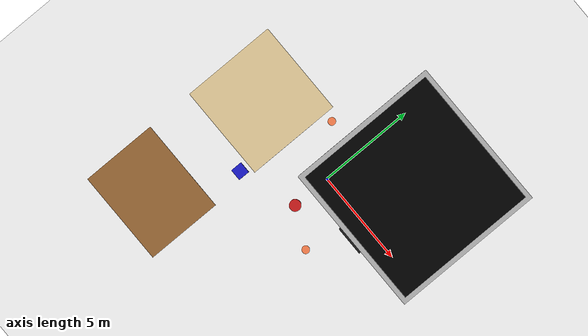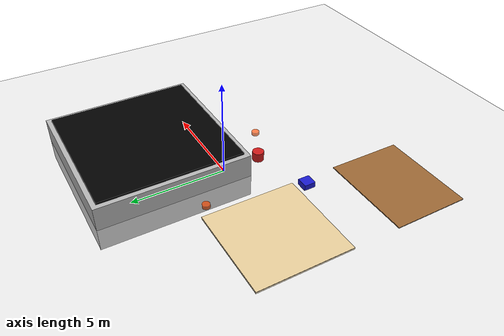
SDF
<?xml version="1.0" ?>
<sdf version="1.6">
  <world name="firefighter_test_world">
    <physics name="default_physics" default="true" type="ode">
      <max_step_size>0.001</max_step_size>
      <real_time_factor>1</real_time_factor>
      <real_time_update_rate>1000</real_time_update_rate>
    </physics>

    <!-- A global light source -->
    <include>
      <uri>model://sun</uri>
    </include>

    <!-- Ground Plane -->
    <include>
      <uri>model://ground_plane</uri>
    </include>

    <!-- Main building structure -->
    <model name="main_building">
      <static>true</static>
      <pose>3 3 0 0 0 0</pose>

      <!-- Main walls -->
      <link name="walls">
        <visual name="visual">
          <geometry>
            <box>
              <size>8 8 2.5</size>
            </box>
          </geometry>
          <material>
            <ambient>0.7 0.7 0.7 1</ambient>
            <diffuse>0.7 0.7 0.7 1</diffuse>
          </material>
        </visual>
        <collision name="collision">
          <geometry>
            <box>
              <size>8 8 2.5</size>
            </box>
          </geometry>
        </collision>
      </link>

      <!-- Interior space (negative space) -->
      <link name="interior">
        <pose>0 0 0.1 0 0 0</pose>
        <visual name="visual">
          <geometry>
            <box>
              <size>7.5 7.5 2.5</size>
            </box>
          </geometry>
          <material>
            <ambient>0 0 0 0</ambient>
            <diffuse>0 0 0 0</diffuse>
          </material>
        </visual>
        <collision name="collision">
          <geometry>
            <box>
              <size>7.5 7.5 2.5</size>
            </box>
          </geometry>
        </collision>
      </link>

      <!-- Entrance (south side) -->
      <link name="entrance">
        <pose>0 -4 0.5 0 0 0</pose>
        <visual name="visual">
          <geometry>
            <box>
              <size>1.5 0.2 1</size>
            </box>
          </geometry>
          <material>
            <ambient>0.1 0.1 0.1 1</ambient>
            <diffuse>0.1 0.1 0.1 1</diffuse>
          </material>
        </visual>
      </link>
    </model>

    <!-- Sand area -->
    <model name="sand_area">
      <static>true</static>
      <pose>-5 0 -0.05 0 0 0</pose>
      <link name="sand_link">
        <visual name="visual">
          <geometry>
            <box>
              <size>5 5 0.1</size>
            </box>
          </geometry>
          <material>
            <ambient>0.9 0.8 0.6 1</ambient>
            <diffuse>0.9 0.8 0.6 1</diffuse>
            <specular>0.1 0.1 0.1 1</specular>
          </material>
        </visual>
        <collision name="collision">
          <geometry>
            <box>
              <size>5 5 0.1</size>
            </box>
          </geometry>
          <surface>
            <friction>
              <ode>
                <mu>40</mu>
                <mu2>40</mu2>
              </ode>
            </friction>
          </surface>
        </collision>
      </link>
    </model>

    <!-- Wooden floor area -->
    <model name="wooden_floor">
      <static>true</static>
      <pose>-5 -7 -0.025 0 0 0</pose>
      <link name="wood_link">
        <visual name="visual">
          <geometry>
            <box>
              <size>5 4 0.05</size>
            </box>
          </geometry>
          <material>
            <ambient>0.6 0.4 0.2 1</ambient>
            <diffuse>0.6 0.4 0.2 1</diffuse>
            <specular>0.2 0.2 0.2 1</specular>
          </material>
        </visual>
        <collision name="collision">
          <geometry>
            <box>
              <size>5 4 0.05</size>
            </box>
          </geometry>
          <surface>
            <friction>
              <ode>
                <mu>0.5</mu>
                <mu2>0.5</mu2>
              </ode>
            </friction>
          </surface>
        </collision>
      </link>
    </model>

    <!-- Obstacles -->
    <model name="obstacle_1">
      <static>true</static>
      <pose>0 -2 0.25 0 0 0</pose>
      <link name="link">
        <visual name="visual">
          <geometry>
            <cylinder>
              <radius>0.3</radius>
              <length>0.5</length>
            </cylinder>
          </geometry>
          <material>
            <ambient>0.8 0.1 0.1 1</ambient>
            <diffuse>0.8 0.1 0.1 1</diffuse>
          </material>
        </visual>
        <collision name="collision">
          <geometry>
            <cylinder>
              <radius>0.3</radius>
              <length>0.5</length>
            </cylinder>
          </geometry>
        </collision>
      </link>
    </model>

    <model name="obstacle_2">
      <static>true</static>
      <pose>-3 -3 0.15 0 0 0</pose>
      <link name="link">
        <visual name="visual">
          <geometry>
            <box>
              <size>0.6 0.6 0.3</size>
            </box>
          </geometry>
          <material>
            <ambient>0.1 0.1 0.8 1</ambient>
            <diffuse>0.1 0.1 0.8 1</diffuse>
          </material>
        </visual>
        <collision name="collision">
          <geometry>
            <box>
              <size>0.6 0.6 0.3</size>
            </box>
          </geometry>
        </collision>
      </link>
    </model>

    <!-- Fire-like visual markers (just visual, no collision) -->
    <model name="fire_marker_1">
      <static>true</static>
      <pose>-2 2 0.1 0 0 0</pose>
      <link name="link">
        <visual name="visual">
          <geometry>
            <cylinder>
              <radius>0.2</radius>
              <length>0.2</length>
            </cylinder>
          </geometry>
          <material>
            <ambient>1.0 0.3 0.0 0.7</ambient>
            <diffuse>1.0 0.3 0.0 0.7</diffuse>
            <emissive>1.0 0.3 0.0 0.7</emissive>
          </material>
        </visual>
      </link>
    </model>

    <model name="fire_marker_2">
      <static>true</static>
      <pose>2 -3 0.1 0 0 0</pose>
      <link name="link">
        <visual name="visual">
          <geometry>
            <cylinder>
              <radius>0.2</radius>
              <length>0.2</length>
            </cylinder>
          </geometry>
          <material>
            <ambient>1.0 0.3 0.0 0.7</ambient>
            <diffuse>1.0 0.3 0.0 0.7</diffuse>
            <emissive>1.0 0.3 0.0 0.7</emissive>
          </material>
        </visual>
      </link>
    </model>
  </world>
</sdf>
